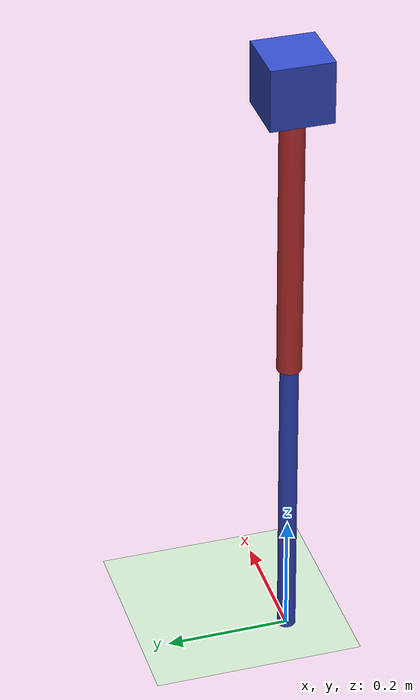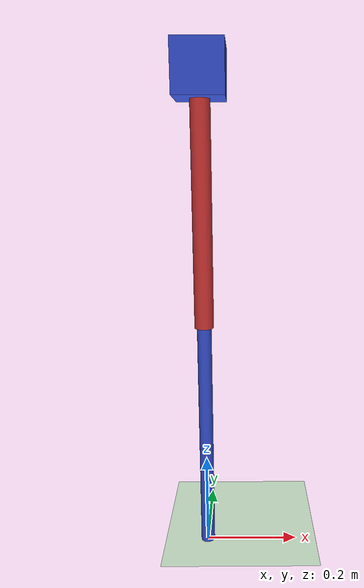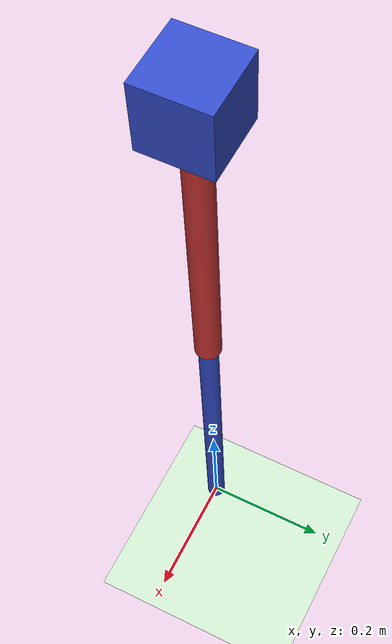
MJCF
<mujoco model="double_pendulum">
  <compiler angle="radian" coordinate="local"/>

  <worldbody>
    <light name="light0" pos="0 0 3" dir="0 0 -1"/>
    <geom name="floor" type="plane" size="2 2 0.1" rgba="0.8 0.9 0.8 1"/>

    <!-- 基座：直接作为世界中的一个body，没有固定关节 -->
    <body name="base" pos="0 0 1">
      <inertial pos="0 0 0" mass="1.0" diaginertia="0.01 0.01 0.01"/>
      <geom name="base_geom" type="box" size="0.05 0.05 0.05" rgba="0.2 0.3 0.8 1"/>

      <!-- 第一摆杆 -->
      <body name="link1" pos="0 0 0">
        <inertial pos="0 0 -0.25" mass="0.5" diaginertia="0.01 0.01 0.001"/>
        <geom name="link1_geom" type="cylinder" size="0.02 0.25"
              fromto="0 0 0 0 0 -0.5" rgba="0.8 0.2 0.2 1"/>
        <joint name="joint1" type="hinge" pos="0 0 0" axis="0 1 0"
               limited="true" range="-2 2" damping="1.0"/>

        <!-- 第二摆杆 -->
        <body name="link2" pos="0 0 -0.5">
          <inertial pos="0 0 -0.25" mass="0.3" diaginertia="0.005 0.005 0.001"/>
          <geom name="link2_geom" type="cylinder" size="0.015 0.25"
                fromto="0 0 0 0 0 -0.5" rgba="0.2 0.3 0.8 1"/>
          <joint name="joint2" type="hinge" pos="0 0 0" axis="0 1 0"
                 limited="true" range="-2 2" damping="1.0"/>
        </body>
      </body>
    </body>
  </worldbody>
</mujoco>
